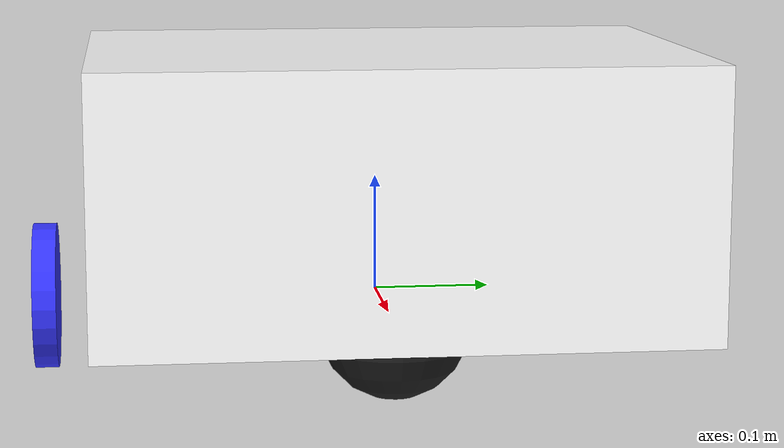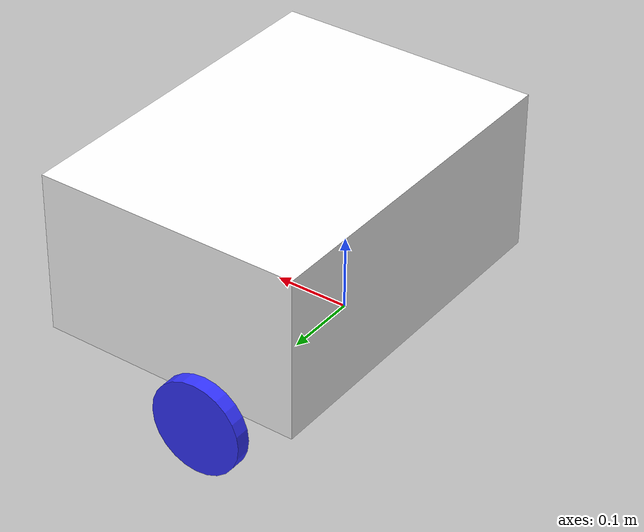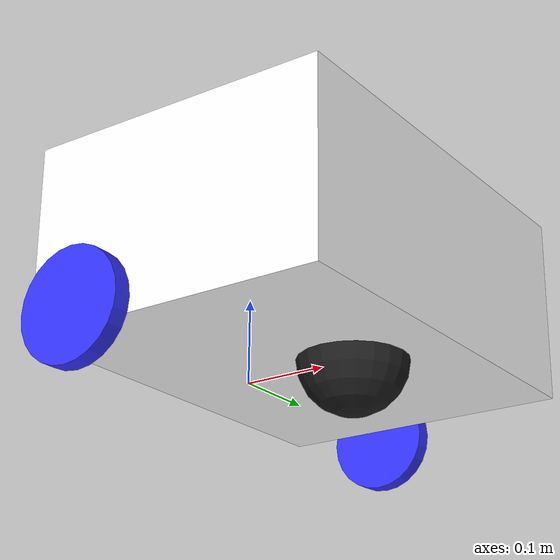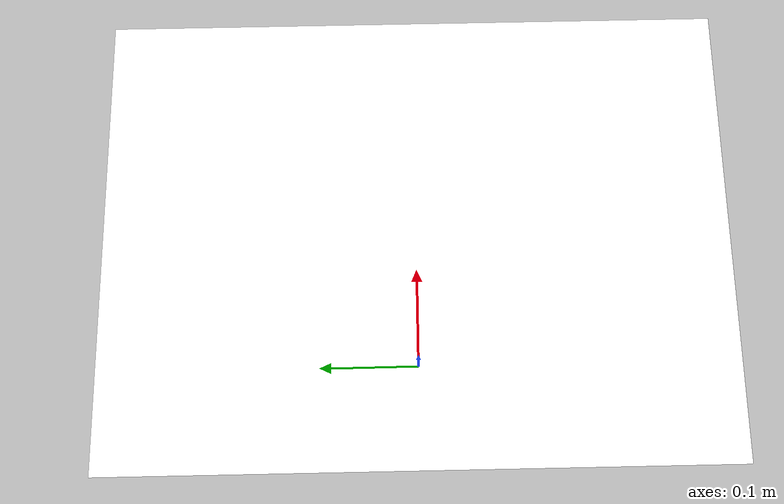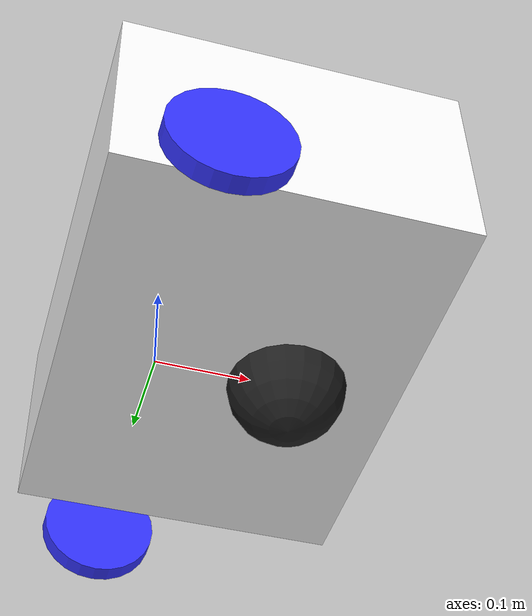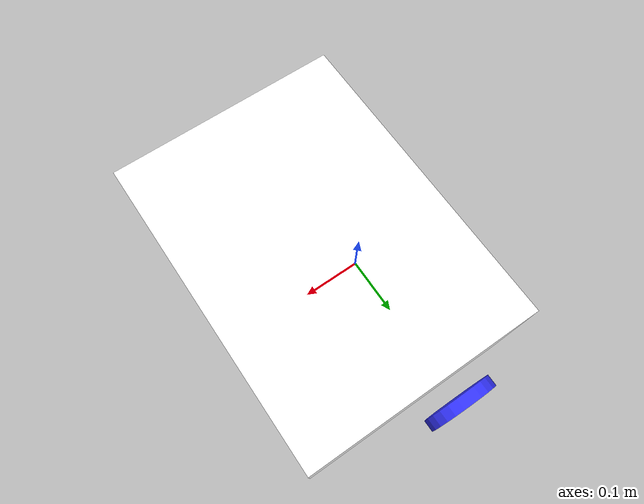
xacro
<?xml version="1.0"?>
<robot xmlns:xacro="http://www.ros.org/wiki/xacro" >

    <xacro:include filename="inertial_macros.xacro"/>

    <material name="white">
        <color rgba="1 1 1 1" />
    </material>

    <material name="orange">
        <color rgba="1 0.3 0.1 1" />
    </material>

    <material name="blue">
        <color rgba="0.2 0.2 1 1" />
    </material>

    <material name="black">
        <color rgba="0 0 0 1" />
    </material>

    <!-- BASE LINK -->
    <link name="base_link">

    </link>

    <!-- CHASSIS LINK-->
    <joint name="chassis_joint" type="fixed">
        <parent link="base_link"/>
        <child link="chassis"/>
        <origin xyz="-0.1 0 0"/> <!-- origin of chassis will be just behind base_link -->
    </joint>

    <link name="chassis">
        <visual>
            <origin xyz="0.18 0 0.11"/>
            <geometry>
                <box size="0.36 0.49 0.22"/>
            </geometry>
            <material name="white"/>

        </visual>
        <collision>
            <origin xyz="0.18 0 0.11"/>
            <geometry>
                <box size="0.36 0.49 0.22"/>
            </geometry>
        </collision>
        <xacro:inertial_box mass="0.5" x="0.36" y="0.49" z="0.22"> <!-- 0.5kg for simulation - may need to change to reflect real mass -->
            <origin xyz="0.18 0 0.11"/>
        </xacro:inertial_box>
    </link>

    <gazebo reference="chassis">
        <material>Gazebo/White</material>
    </gazebo>

    <!-- LEFT WHEEL LINK -->

    <joint name="left_wheel_joint" type="continuous">
        <parent link="base_link"/>
        <child link="left_wheel"/>
        <origin xyz="0 0.286 0" rpy="-${pi/2} 0 0"/>
        <axis xyz="0 0 1"/>
    </joint>

    <link name="left_wheel">
        <visual>
            <geometry>
                <cylinder radius="0.0625" length="0.02"/>
            </geometry>
            <material name="blue"/>
        </visual>
        <collision>
            <geometry>
                <cylinder radius="0.0625" length="0.02"/>
            </geometry>
        </collision>
        <xacro:inertial_cylinder mass="0.1" length="0.02" radius="0.0625">
            <origin xyz="0 0 0" rpy="0 0 0"/>
        </xacro:inertial_cylinder>
    </link>

    <gazebo reference="left_wheel">
        <material>Gazebo/Blue</material>
    </gazebo>

    <!-- RIGHT WHEEL LINK -->

    <joint name="right_wheel_joint" type="continuous">
        <parent link="base_link"/>
        <child link="right_wheel"/>
        <origin xyz="0 -0.286 0" rpy="${pi/2} 0 0"/>
        <axis xyz="0 0 -1"/>
    </joint>

    <link name="right_wheel">
        <visual>
            <geometry>
                <cylinder radius="0.0625" length="0.02"/>
            </geometry>
            <material name="blue"/>
        </visual>
        <collision>
            <geometry>
                <cylinder radius="0.0625" length="0.02"/>
            </geometry>
        </collision>
        <xacro:inertial_cylinder mass="0.1" length="0.02" radius="0.0625">
            <origin xyz="0 0 0" rpy="0 0 0"/>
        </xacro:inertial_cylinder>
    </link>

    <gazebo reference="right_wheel">
        <material>Gazebo/Blue</material>
    </gazebo>

    <!-- CASTER WHEEL LINK -->
    <!-- note: MARIA currently has two caster wheels at the front left and rear right.
    However, for the sake of simulation a single spherical caster wheel will be used. -->

    <joint name="caster_wheel_joint" type="fixed">

        <parent link="chassis"/>
        <child link="caster_wheel"/>
        <origin xyz="0.24 0 0"/> <!-- change -->
    </joint>

    <link name="caster_wheel">
        <visual>
            <geometry>
                <sphere radius="0.0625"/> <!-- change -->
                <material name="black"/>
            </geometry>
        </visual>
        <collision>
            <geometry>
                <sphere radius="0.0625"/> <!-- change -->
            </geometry>
        </collision>
        <xacro:inertial_sphere mass="0.1" radius="0.0625">
            <origin xyz="0 0 0" rpy="0 0 0"/>
        </xacro:inertial_sphere>
    </link>

    <gazebo reference="caster_wheel">
        <material>Gazebo/Black</material>
        <mu1 value="0.001"/>
        <mu2 value="0.001"/>
    </gazebo>

</robot>
